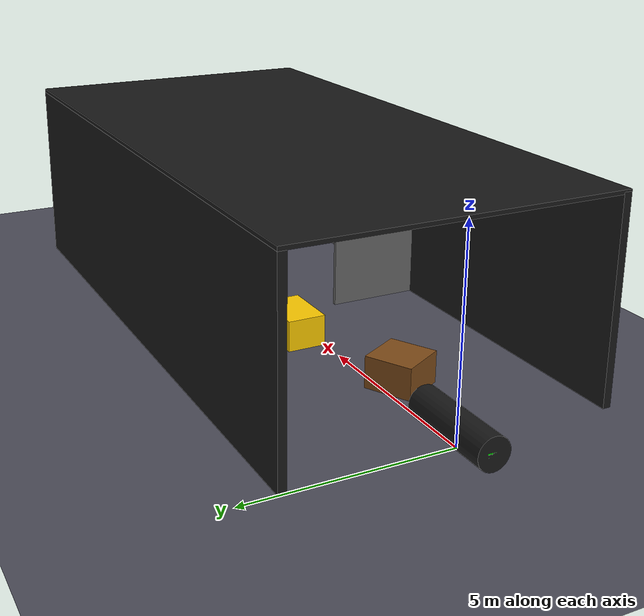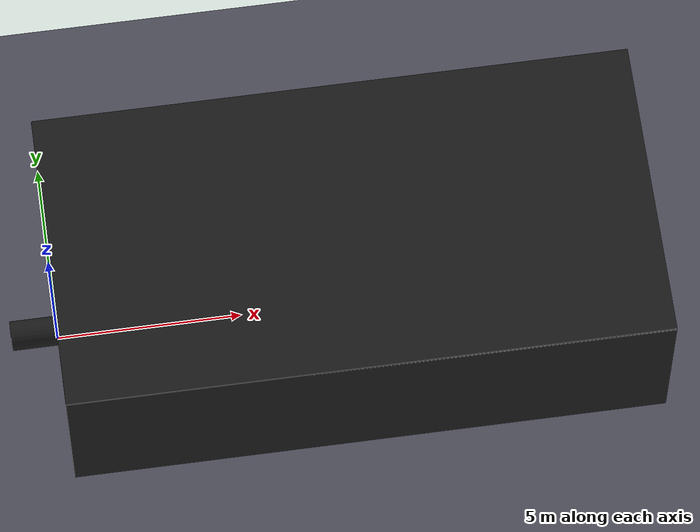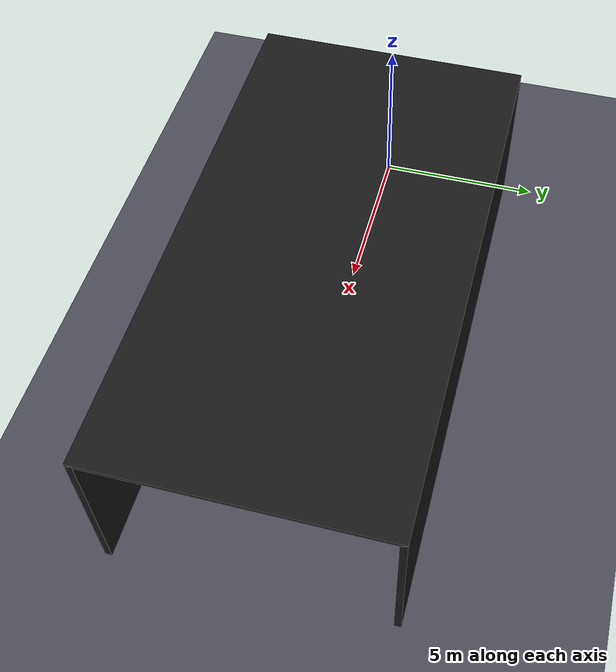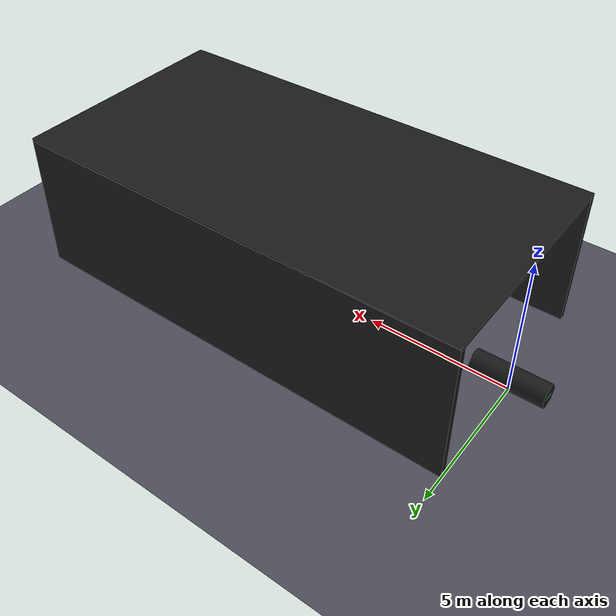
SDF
<?xml version="1.0" ?>
<sdf version="1.8">
  <world name="industrial_warehouse">
    <physics name="1ms" type="ignored">
      <max_step_size>0.001</max_step_size>
      <real_time_factor>1.0</real_time_factor>
    </physics>

    <plugin filename="gz-sim-physics-system" name="gz::sim::systems::Physics"/>
    <plugin filename="gz-sim-user-commands-system" name="gz::sim::systems::UserCommands"/>
    <plugin filename="gz-sim-scene-broadcaster-system" name="gz::sim::systems::SceneBroadcaster"/>
    <plugin filename="gz-sim-sensors-system" name="gz::sim::systems::Sensors">
      <render_engine>ogre2</render_engine>
    </plugin>

    <light type="directional" name="sun">
      <cast_shadows>true</cast_shadows>
      <pose>0 0 10 0 0 0</pose>
      <diffuse>0.8 0.8 0.8 1</diffuse>
      <specular>0.2 0.2 0.2 1</specular>
      <direction>-0.5 0.1 -0.9</direction>
    </light>

    <light type="point" name="bay_light_1"><pose>4 0 3.5 0 0 0</pose><diffuse>0.7 0.8 1.0 1</diffuse><specular>1 1 1 1</specular><attenuation><range>20</range><constant>0.5</constant></attenuation><cast_shadows>true</cast_shadows></light>
    <light type="point" name="bay_light_2"><pose>10 0 3.5 0 0 0</pose><diffuse>0.7 0.8 1.0 1</diffuse><specular>1 1 1 1</specular><attenuation><range>20</range><constant>0.5</constant></attenuation><cast_shadows>true</cast_shadows></light>

    <model name="warehouse_floor">
      <static>true</static>
      <link name="link">
        <collision name="c"><geometry><plane><normal>0 0 1</normal><size>50 50</size></plane></geometry></collision>
        <visual name="v"><geometry><plane><normal>0 0 1</normal><size>50 50</size></plane></geometry><material><ambient>0.2 0.2 0.2 1</ambient><diffuse>0.3 0.3 0.35 1</diffuse></material></visual>
      </link>
    </model>

    <model name="launch_tube">
      <static>true</static>
      <pose>0 0 0.5 0 1.5708 0</pose>
      <link name="link">
        <visual name="v">
          <geometry><cylinder><radius>0.4</radius><length>2.5</length></cylinder></geometry>
          <material><ambient>0.05 0.05 0.05 1</ambient><diffuse>0.1 0.1 0.1 1</diffuse></material>
        </visual>
        <collision name="c">
          <geometry><cylinder><radius>0.4</radius><length>2.5</length></cylinder></geometry>
        </collision>
      </link>
    </model>

    <model name="warehouse_structure">
      <static>true</static>
      <pose>8 0 0 0 0 0</pose>
      <link name="wall_l"><pose>0 4 2.5 0 0 0</pose><visual name="v"><geometry><box><size>16 0.2 5</size></box></geometry><material><ambient>0.1 0.1 0.1 1</ambient></material></visual><collision name="c"><geometry><box><size>16 0.2 5</size></box></geometry></collision></link>
      <link name="wall_r"><pose>0 -4 2.5 0 0 0</pose><visual name="v"><geometry><box><size>16 0.2 5</size></box></geometry><material><ambient>0.1 0.1 0.1 1</ambient></material></visual><collision name="c"><geometry><box><size>16 0.2 5</size></box></geometry></collision></link>
      <link name="partition_left"><pose>0 2.75 2.5 0 0 1.57</pose><visual name="v"><geometry><box><size>2.5 0.1 5</size></box></geometry><material><ambient>0.4 0.4 0.4 1</ambient></material></visual><collision name="c"><geometry><box><size>2.5 0.1 5</size></box></geometry></collision></link>
      <link name="partition_right"><pose>0 -2.75 2.5 0 0 1.57</pose><visual name="v"><geometry><box><size>2.5 0.1 5</size></box></geometry><material><ambient>0.4 0.4 0.4 1</ambient></material></visual><collision name="c"><geometry><box><size>2.5 0.1 5</size></box></geometry></collision></link>
      <link name="roof"><pose>0 0 5 0 0 0</pose><visual name="v"><geometry><box><size>16 8.2 0.1</size></box></geometry><material><ambient>0.1 0.1 0.1 1</ambient></material></visual><collision name="c"><geometry><box><size>16 8.2 0.1</size></box></geometry></collision></link>
    </model>

    <model name="pallet_stack">
      <static>true</static>
      <pose>3.0 -0.5 0.4 0 0 0.5</pose>
      <link name="link">
        <visual name="v"><geometry><box><size>1.2 1.2 0.8</size></box></geometry><material><ambient>0.5 0.3 0.1 1</ambient><diffuse>0.5 0.3 0.1 1</diffuse></material></visual>
        <collision name="c"><geometry><box><size>1.2 1.2 0.8</size></box></geometry></collision>
      </link>
    </model>

    <model name="moving_forklift">
      <pose>6.5 0.5 0.4 0 0 0</pose>
      <link name="box_link">
        <visual name="visual"><geometry><box><size>1.5 1.0 0.8</size></box></geometry><material><ambient>1 0.8 0 1</ambient><diffuse>1 0.8 0 1</diffuse></material></visual>
        <collision name="collision"><geometry><box><size>1.5 1.0 0.8</size></box></geometry></collision>
      </link>
      <plugin filename="gz-sim-velocity-control-system" name="gz::sim::systems::VelocityControl"><link_name>box_link</link_name></plugin>
    </model>

    <model name="drone">
      <pose>-1.1 0 0.5 0 0 0</pose>
      <link name="base_link">
        <visual name="visual">
          <geometry><box><size>0.3 0.3 0.1</size></box></geometry>
          <material><ambient>0 1 0 1</ambient></material>
        </visual>

        <sensor name="camera" type="camera">
          <pose>0.15 0 0 0 0.26 0</pose>
          <camera>
            <horizontal_fov>1.047</horizontal_fov>
            <image>
              <width>640</width>
              <height>480</height>
            </image>
            <clip>
              <near>0.1</near>
              <far>100</far>
            </clip>
          </camera>
          <always_on>1</always_on>
          <update_rate>30</update_rate>
          <visualize>true</visualize>
          <topic>camera</topic>
        </sensor>

        <sensor name="lidar" type="gpu_lidar">
          <pose>0.15 0 0 0 0 0</pose>
          <topic>/model/drone/device/lidar/scan</topic>
          <update_rate>10</update_rate>
          <ray>
            <scan>
              <horizontal><samples>360</samples><resolution>1</resolution><min_angle>-3.14</min_angle><max_angle>3.14</max_angle></horizontal>
            </scan>
            <range><min>0.1</min><max>15.0</max></range>
          </ray>
        </sensor>
      </link>
      <plugin filename="gz-sim-velocity-control-system" name="gz::sim::systems::VelocityControl"><link_name>base_link</link_name></plugin>
    </model>
  </world>
</sdf>
